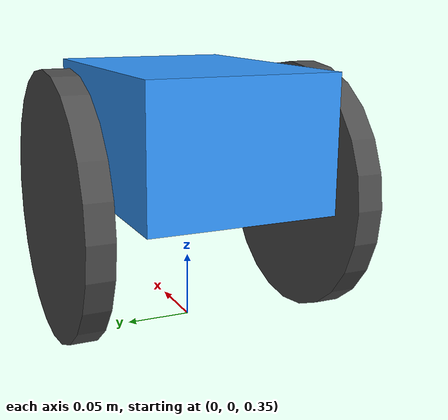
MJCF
<?xml version="1.0" encoding="utf-8"?>
<mujoco model="simple_wheeled_robot">
  <!-- Настройки -->
  <option timestep="0.0001" integrator="RK4" cone="elliptic"/>
  <option gravity="0 0 -9.81"/>

  <!-- Статистика -->
  <statistic center="0 0 0.5" extent="2"/>

  <!-- Мир -->
  <worldbody>
    <!-- Пол -->
    <light name="top" pos="0 0 3" dir="0 0 -1" directional="true"/>
    <geom name="floor" type="plane" size="10 10 0.1" rgba="0.8 0.9 0.8 1" friction="1 0.005 0.0001"/>

    <!-- Основной корпус робота -->
    <body name="torso" pos="0 0 0.5">
      <freejoint name="root"/>
      <geom name="torso_geom" type="box" size="0.1 0.07 0.05" mass="0.7" rgba="0.2 0.6 1 1"/>

      <!-- Левое колесо - прикреплено к ЦЕНТРУ корпуса -->
      <body name="left_wheel" pos="0 0 -0.05">  <!-- Z=-0.05 (ниже центра корпуса) -->
        <joint name="left_wheel_joint" type="hinge" axis="0 1 0" pos="0 0 0" limited="false"/>
        <geom name="left_wheel_geom" type="cylinder" size="0.1 0.01"
              euler="90 0 0" mass="0.3" rgba="0.3 0.3 0.3 1" pos="0 0.1 0"/> <!-- Y=0.1 (смещено влево) -->
      </body>

      <!-- Правое колесо - прикреплено к ЦЕНТРУ корпуса -->
      <body name="right_wheel" pos="0 0 -0.05">  <!-- Z=-0.05 (ниже центра корпуса) -->
        <joint name="right_wheel_joint" type="hinge" axis="0 1 0" pos="0 0 0" limited="false"/>
        <geom name="right_wheel_geom" type="cylinder" size="0.1 0.01"
              euler="90 0 0" mass="0.3" rgba="0.3 0.3 0.3 1" pos="0 -0.1 0"/> <!-- Y=-0.1 (смещено вправо) -->
      </body>
    </body>
  </worldbody>

  <!-- Приводы -->
  <actuator>
    <!-- Двигатели колес -->
    <motor name="left_wheel_motor" joint="left_wheel_joint" gear="50" ctrllimited="true" ctrlrange="-100 100"/>
    <motor name="right_wheel_motor" joint="right_wheel_joint" gear="50" ctrllimited="true" ctrlrange="-100 100"/>
  </actuator>

  <!-- Датчики -->
  <sensor>
    <!-- Позиция и ориентация корпуса -->
    <framepos name="torso_pos" objtype="body" objname="torso"/>
    <framequat name="torso_quat" objtype="body" objname="torso"/>

    <!-- Скорость колес -->
    <jointvel name="left_wheel_vel" joint="left_wheel_joint"/>
    <jointvel name="right_wheel_vel" joint="right_wheel_joint"/>
  </sensor>
</mujoco>
